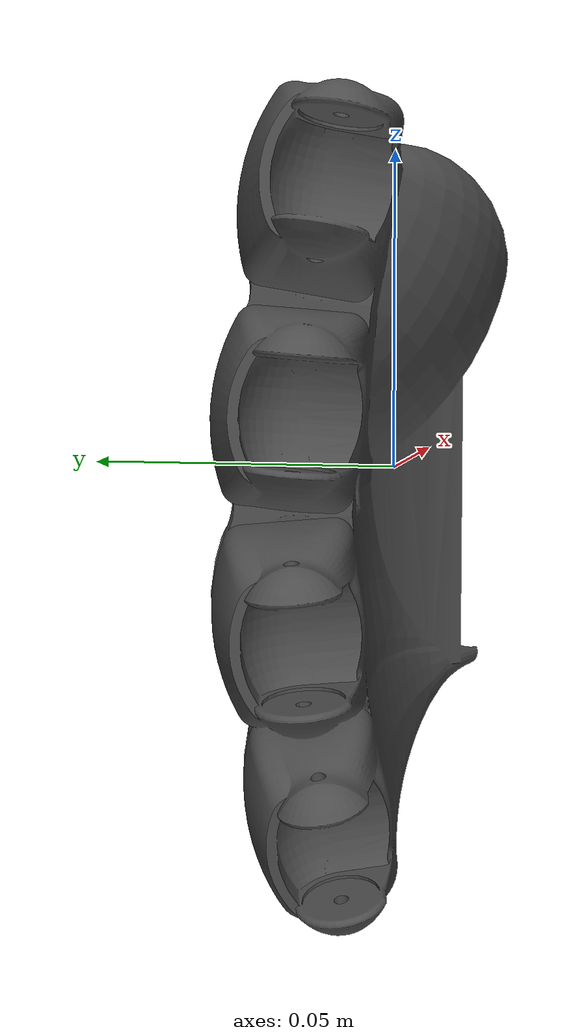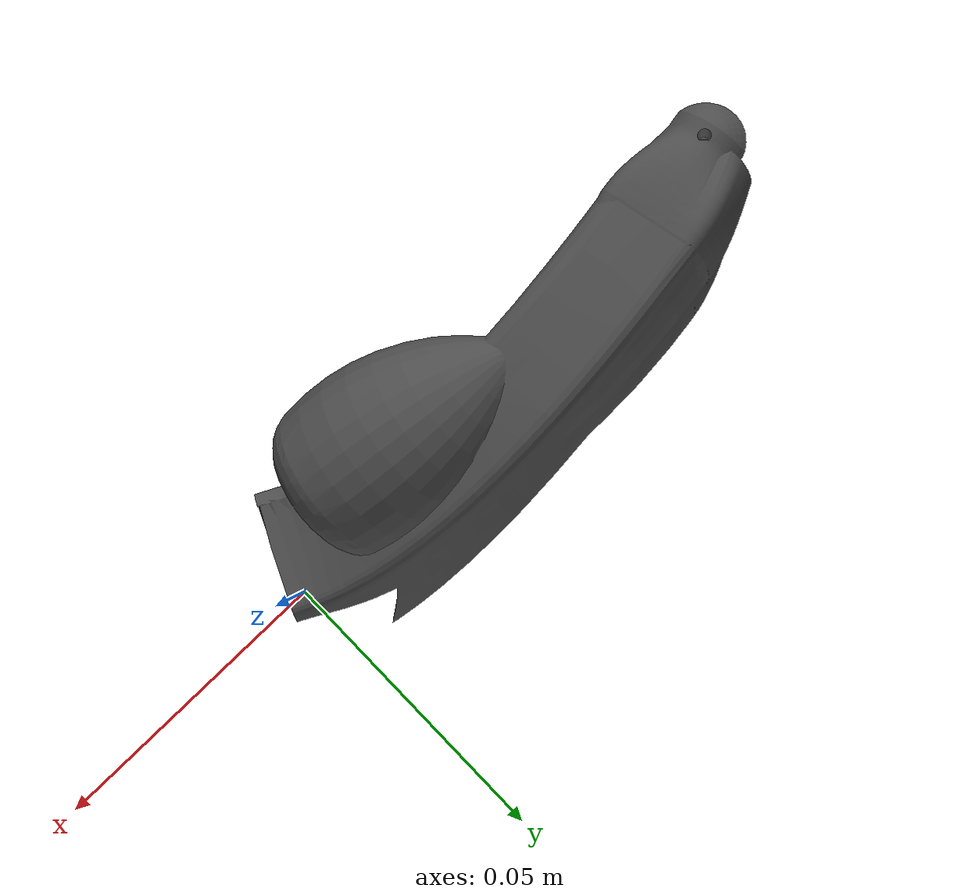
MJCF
<mujoco model="palm_right_link">
  <default>
    <default class="visual">
      <geom group="2" type="mesh" contype="0" conaffinity="0"/>
    </default>
    <default class="collision">
      <geom group="3" type="mesh"/>
    </default>
  </default>
  <asset>
    <material name="mtl_palm_right_link" specular="0.20000000000000004" shininess="1.0" rgba="0.29803922 0.29803922 0.29803922 1.0"/>
    <mesh file="palm_right_link.obj"/>
  </asset>
  <worldbody>
    <body name="palm_right_link">
      <geom material="mtl_palm_right_link" mesh="palm_right_link" class="visual"/>
      <geom mesh="palm_right_link" class="collision"/>
    </body>
  </worldbody>
</mujoco>
